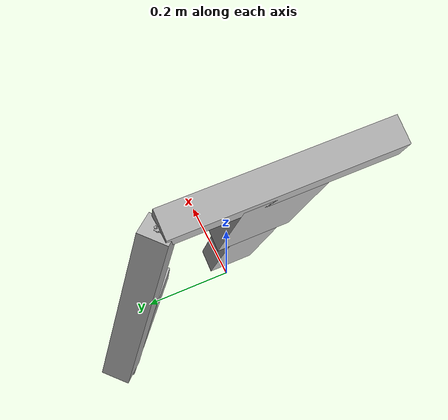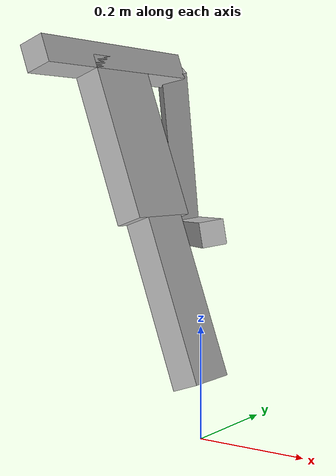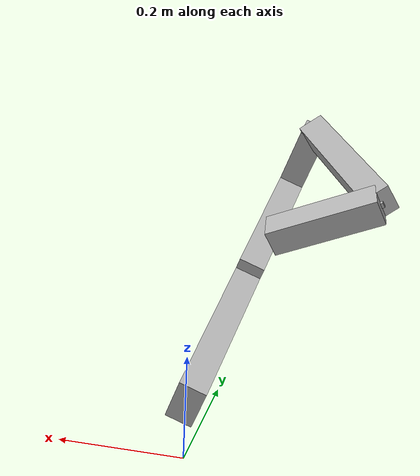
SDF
<sdf version='1.6'>

  <model name='myboat'>
    <link name='back_low'>
      <pose frame=''>0 0 0.1 3.14159 -1.2308 3.14159</pose>
      <inertial>
        <pose frame=''>0.314286 0 0 0 -0 0</pose>
        <mass>21</mass>
        <inertia>
          <ixx>0.043</ixx>
          <ixy>0</ixy>
          <ixz>0</ixz>
          <iyy>0.690114</iyy>
          <iyz>0</iyz>
          <izz>0.725714</izz>
        </inertia>
      </inertial>
      <visual name='back_low_visual'>
        <pose frame=''>0.15 0 0 0 -0 0</pose>
        <geometry>
          <box>
            <size>0.3 0.1 0.05</size>
          </box>
        </geometry>
      </visual>
      <visual name='back_low_fixed_joint_lump__back_high_visual_1'>
        <pose frame=''>0.45 0 0 0 -0 0</pose>
        <geometry>
          <box>
            <size>0.3 0.15 0.05</size>
          </box>
        </geometry>
      </visual>
      <visual name='back_low_fixed_joint_lump__shoulder_link_visual_2'>
        <pose frame=''>0.6 0 0 0 -0 0</pose>
        <geometry>
          <box>
            <size>0.05 0.4 0.05</size>
          </box>
        </geometry>
      </visual>
    </link>
    <joint name='hip2' type='revolute'>
      <child>back_low</child>
      <parent>world</parent>
      <axis>
        <xyz>0 1 0</xyz>
        <limit>
          <lower>-1</lower>
          <upper>1</upper>
          <effort>100</effort>
          <velocity>1</velocity>
        </limit>
        <dynamics>
          <damping>0.5</damping>
          <friction>0.1</friction>
          <spring_reference>0</spring_reference>
          <spring_stiffness>0</spring_stiffness>
        </dynamics>
        <use_parent_model_frame>1</use_parent_model_frame>
      </axis>
      <physics>
        <provide_feedback>1</provide_feedback>
        <ode>
          <provide_feedback>1</provide_feedback>
          <limit>
            <cfm>0</cfm>
            <erp>0.2</erp>
          </limit>
        </ode>
      </physics>
    </joint>
    <link name='left_shoulder_xx_link'>
      <pose frame=''>-0.200092 0.2 0.665653 -2.79032 -1.20769 2.76797</pose>
      <inertial>
        <pose frame=''>0 0 0 0 -0 0</pose>
        <mass>0.02</mass>
        <inertia>
          <ixx>3.34e-07</ixx>
          <ixy>0</ixy>
          <ixz>0</ixz>
          <iyy>3.34e-07</iyy>
          <iyz>0</iyz>
          <izz>3.34e-07</izz>
        </inertia>
      </inertial>
      <visual name='left_shoulder_xx_link_visual'>
        <pose frame=''>0 0 0 0 -0 0</pose>
        <geometry>
          <box>
            <size>0.01 0.01 0.01</size>
          </box>
        </geometry>
      </visual>
      <visual name='left_shoulder_xx_link_fixed_joint_lump__left_shoulder_psi_link_visual_1'>
        <pose frame=''>0 0 0 -0.803 0 0</pose>
        <geometry>
          <box>
            <size>0.01 0.01 0.01</size>
          </box>
        </geometry>
      </visual>
    </link>
    <joint name='shoulder_l' type='revolute'>
      <child>left_shoulder_xx_link</child>
      <parent>back_low</parent>
      <axis>
        <xyz>-0.942755 0 -0.333487</xyz>
        <limit>
          <lower>-1.5</lower>
          <upper>0.5</upper>
          <effort>100</effort>
          <velocity>1</velocity>
        </limit>
        <dynamics>
          <damping>0.5</damping>
          <friction>0.1</friction>
          <spring_reference>0</spring_reference>
          <spring_stiffness>0</spring_stiffness>
        </dynamics>
        <use_parent_model_frame>1</use_parent_model_frame>
      </axis>
      <physics>
        <provide_feedback>1</provide_feedback>
        <ode>
          <provide_feedback>1</provide_feedback>
          <limit>
            <cfm>0</cfm>
            <erp>0.2</erp>
          </limit>
        </ode>
      </physics>
    </joint>
    <link name='arm_l_upper'>
      <pose frame=''>-0.200092 0.2 0.665653 0.42859 -1.18849 -1.20039</pose>
      <inertial>
        <pose frame=''>-0.245054 0.004472 -0.046211 0 -0 0</pose>
        <mass>2.01</mass>
        <inertia>
          <ixx>0.0114755</ixx>
          <ixy>0.000520063</ixy>
          <ixz>-0.00537454</ixz>
          <iyy>0.0275897</iyy>
          <iyz>0.000678288</iyz>
          <izz>0.0206456</izz>
        </inertia>
      </inertial>
      <visual name='arm_l_upper_visual'>
        <pose frame=''>-0.175 0 0 0 -0 0</pose>
        <geometry>
          <box>
            <size>0.35 0.05 0.05</size>
          </box>
        </geometry>
      </visual>
      <visual name='arm_l_upper_fixed_joint_lump__left_elbow_psi_link_visual_1'>
        <pose frame=''>-0.35 0 0 3.14159 -1.20159 3.14159</pose>
        <geometry>
          <box>
            <size>0.01 0.01 0.01</size>
          </box>
        </geometry>
      </visual>
      <visual name='arm_l_upper_fixed_joint_lump__arm_l_lower_1_visual_2'>
        <pose frame=''>-0.314059 0.008988 -0.092884 2.91336 -1.19127 -2.89655</pose>
        <geometry>
          <box>
            <size>0.2 0.05 0.05</size>
          </box>
        </geometry>
      </visual>
    </link>
    <joint name='LShoulderTheta' type='revolute'>
      <child>arm_l_upper</child>
      <parent>left_shoulder_xx_link</parent>
      <axis>
        <xyz>0.708285 0.688691 0.155042</xyz>
        <limit>
          <lower>-2</lower>
          <upper>1</upper>
          <effort>100</effort>
          <velocity>1</velocity>
        </limit>
        <dynamics>
          <damping>0.5</damping>
          <friction>0.1</friction>
          <spring_reference>0</spring_reference>
          <spring_stiffness>0</spring_stiffness>
        </dynamics>
        <use_parent_model_frame>1</use_parent_model_frame>
      </axis>
      <physics>
        <provide_feedback>1</provide_feedback>
        <ode>
          <provide_feedback>1</provide_feedback>
          <limit>
            <cfm>0</cfm>
            <erp>0.2</erp>
          </limit>
        </ode>
      </physics>
    </joint>
  </model>
</sdf>
